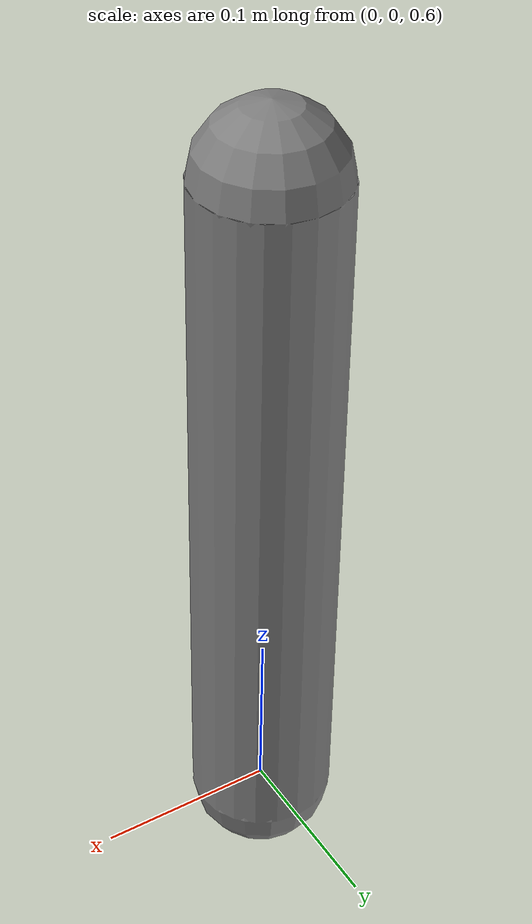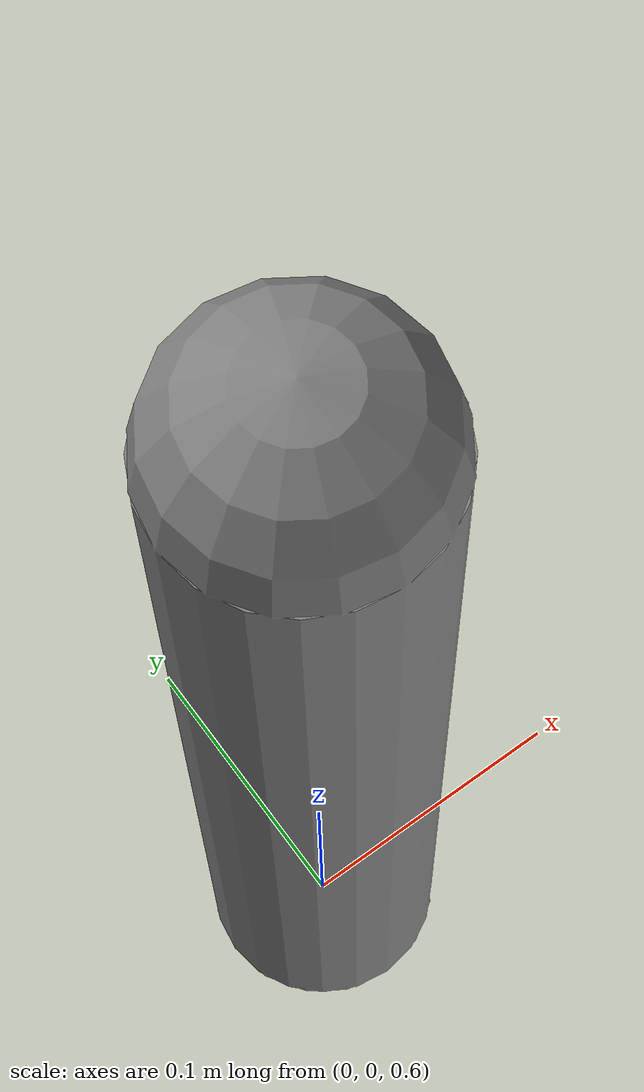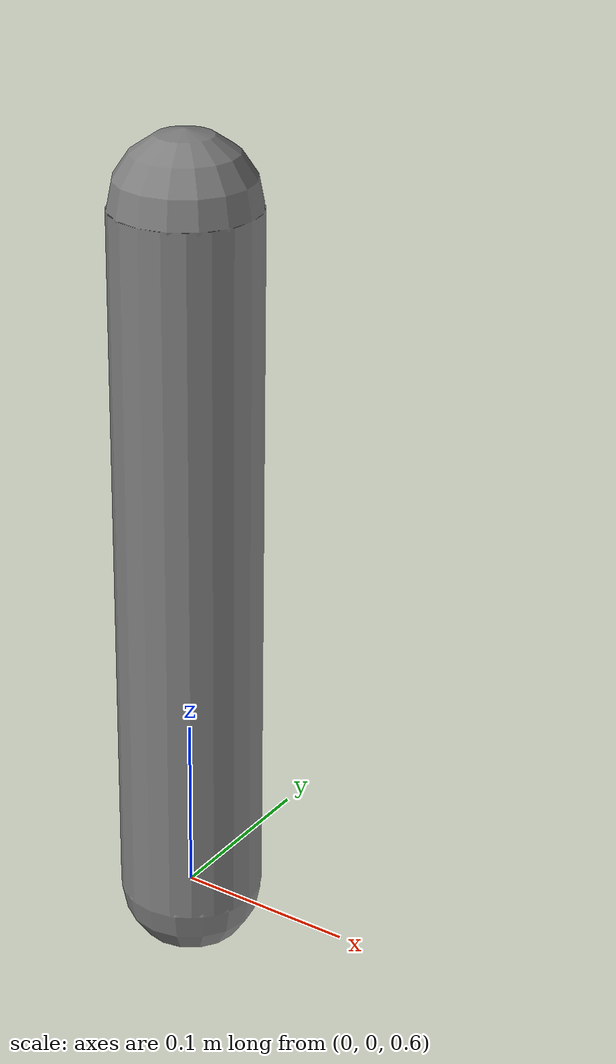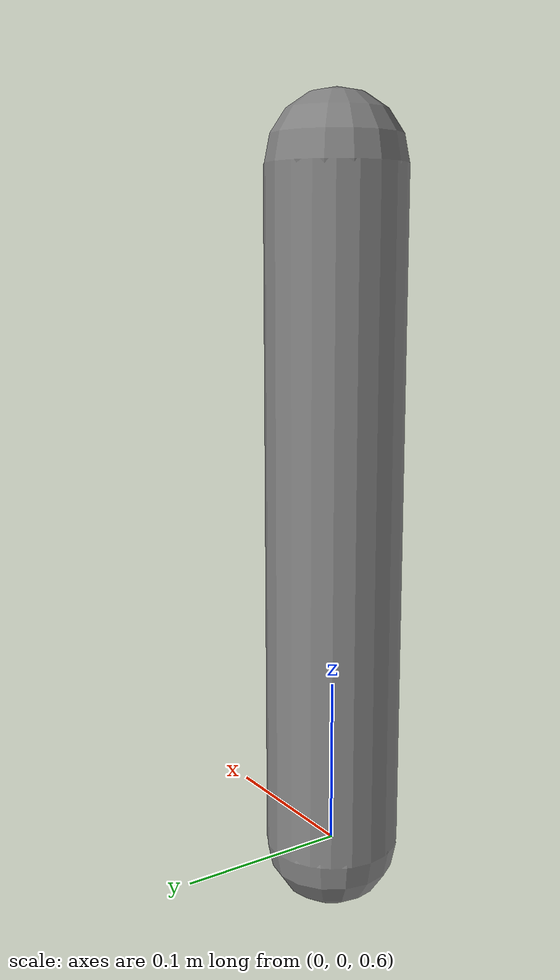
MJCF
<!-- Same model, different source text: reordered attributes, added comments and whitespace.
     MuJoCo compiles both to the same artifact, so `certify` returns exit 0. -->
<mujoco model="arm">
  <option timestep="0.002"/>

  <worldbody>
    <!-- one link driven by one hinge -->
    <body pos="0 0 1" name="link">
      <geom size="0.04" name="shaft" mass="1.5" fromto="0 0 0 0 0 -0.4" type="capsule"/>
      <joint axis="0 1 0" name="elbow" damping="0.1" type="hinge"/>
    </body>
  </worldbody>

  <actuator>
    <motor gear="20" joint="elbow"/>
  </actuator>
</mujoco>
